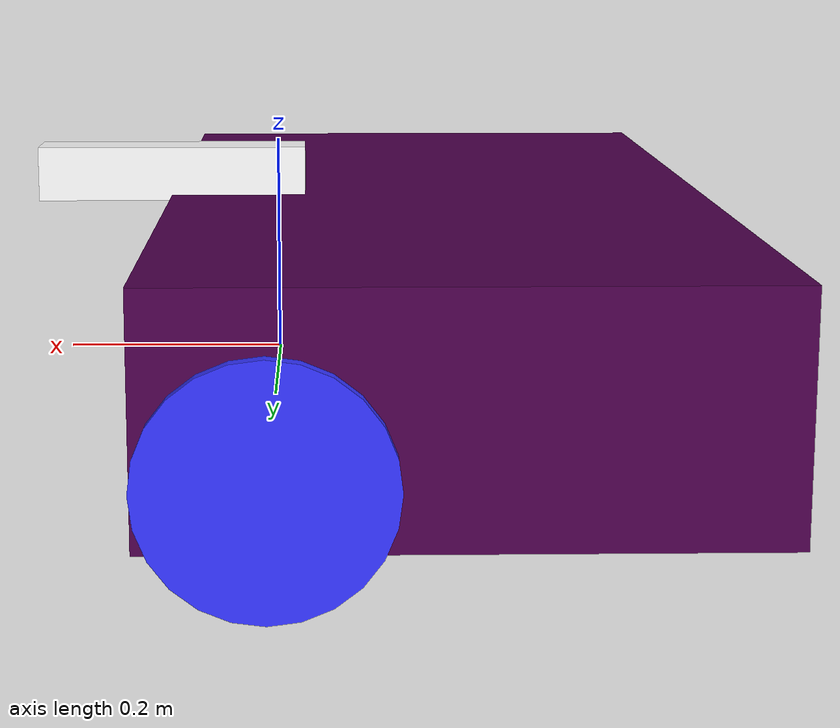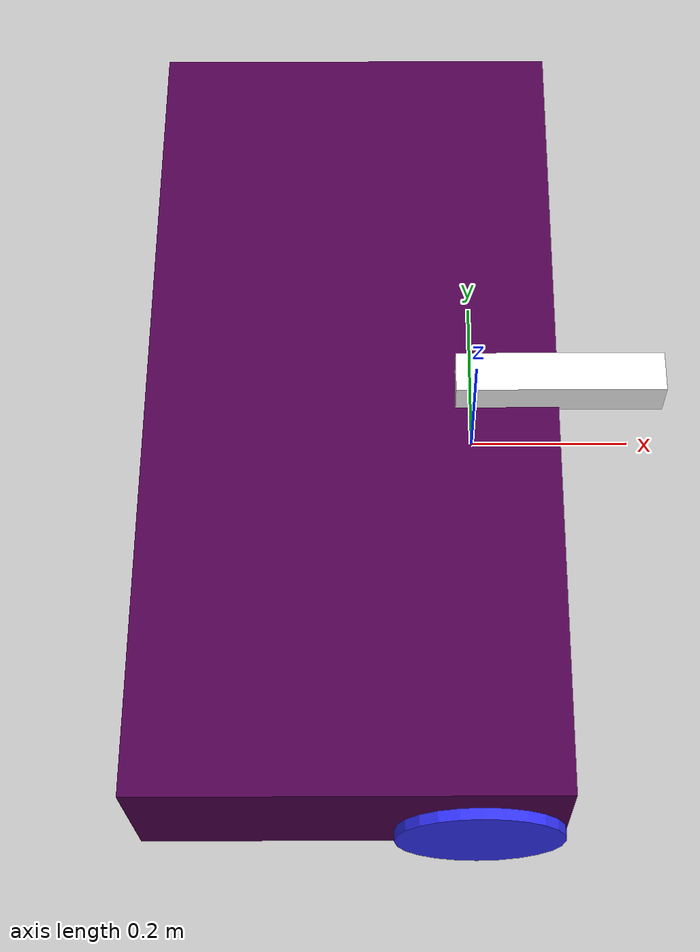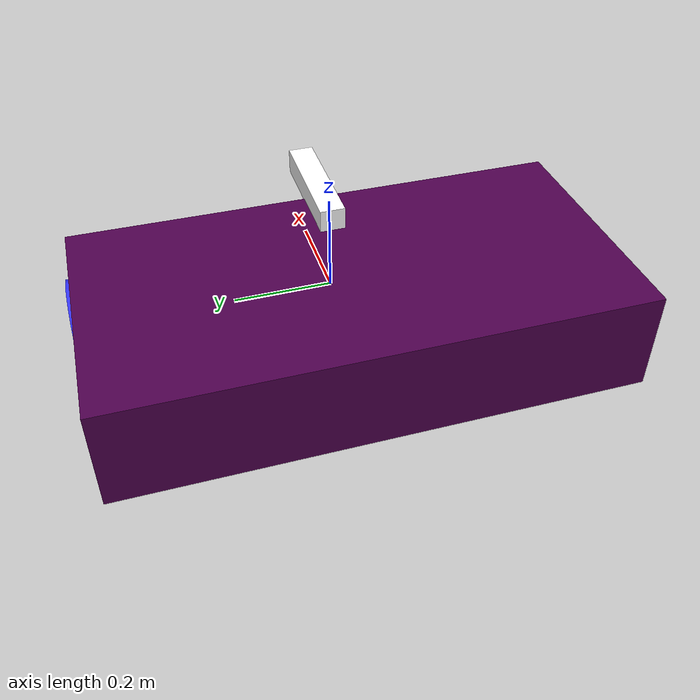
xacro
<?xml version="1.0" ?>
<!-- |    This document was autogenerated by xacro from robot.xacro                    | -->
<!-- |    EDITING THIS FILE BY HAND IS NOT RECOMMENDED                                 | -->
<robot name="robot">
  <!-- Materials -->
  <material name="white">
    <color rgba="1 1 1 1"/>
  </material>
  <material name="orange">
    <color rgba="0.3 0 0.3 1"/>
  </material>
  <material name="blue">
    <color rgba="0.2 0.2 1 1"/>
  </material>
  <material name="black">
    <color rgba="0 0 0 1"/>
  </material>
  <material name="red">
    <color rgba="1 0 0 1"/>
  </material>
  <!-- Base Link -->
  <link name="base_link"/>
  <link name="base_footprint"/>
  <joint name="base_footprint_joint" type="fixed">
    <parent link="base_link"/>
    <child link="base_footprint"/>
    <origin rpy="0 0 0" xyz="0 0 -0.138"/>
  </joint>
  <!-- Chassis -->
  <joint name="chassis_joint" type="fixed">
    <parent link="base_link"/>
    <child link="chassis"/>
    <origin xyz="-0.4 0 -0.05"/>
  </joint>
  <link name="chassis">
    <inertial>
      <origin rpy="0 0 0" xyz="0.25 0 0.1"/>
      <mass value="1.0"/>
      <inertia ixx="0.08666666666666667" ixy="0.0" ixz="0.0" iyy="0.02416666666666667" iyz="0.0" izz="0.10416666666666666"/>
    </inertial>
    <visual>
      <origin xyz="0.25 0 0.1"/>
      <geometry>
        <box size="0.5 1 0.2"/>
      </geometry>
      <material name="orange"/>
    </visual>
    <collision>
      <origin xyz="0.25 0 0.1"/>
      <geometry>
        <box size="0.5 1 0.2"/>
      </geometry>
    </collision>
  </link>
  <gazebo reference="chassis">
    <material>Gazebo/Orange</material>
  </gazebo>
  <!-- Left Wheel -->
  <joint name="left_wheel_joint" type="continuous">
    <parent link="base_link"/>
    <child link="left_wheel"/>
    <origin rpy="-1.5707963267948966 0 3.141592653589793" xyz="0 0.5 0"/>
    <axis xyz="0 0 1"/>
  </joint>
  <link name="left_wheel">
    <visual>
      <geometry>
        <cylinder length="0.026" radius="0.1"/>
      </geometry>
      <material name="blue"/>
    </visual>
    <collision>
      <geometry>
        <cylinder length="0.026" radius="0.1"/>
      </geometry>
    </collision>
    <inertial>
      <origin rpy="0 0 0" xyz="0 0 0"/>
      <mass value="0.05"/>
      <inertia ixx="0.0001278166666666667" ixy="0.0" ixz="0.0" iyy="0.0001278166666666667" iyz="0.0" izz="0.00025000000000000006"/>
    </inertial>
  </link>
  <gazebo reference="left_wheel">
    <material>Gazebo/Blue</material>
  </gazebo>
  <!-- Right Wheel (Restored) -->
  <joint name="right_wheel_joint" type="continuous">
    <parent link="base_link"/>
    <child link="right_wheel"/>
    <origin rpy="1.5707963267948966 0 3.141592653589793" xyz="0 -0.5 0"/>
    <axis xyz="0 0 -1"/>
  </joint>
  <link name="right_wheel">
    <visual>
      <geometry>
        <cylinder length="0.026" radius="0.1"/>
      </geometry>
      <material name="blue"/>
    </visual>
    <collision>
      <geometry>
        <cylinder length="0.026" radius="0.1"/>
      </geometry>
    </collision>
    <inertial>
      <origin rpy="0 0 0" xyz="0 0 0"/>
      <mass value="0.05"/>
      <inertia ixx="0.0001278166666666667" ixy="0.0" ixz="0.0" iyy="0.0001278166666666667" iyz="0.0" izz="0.00025000000000000006"/>
    </inertial>
  </link>
  <gazebo reference="right_wheel">
    <material>Gazebo/Blue</material>
  </gazebo>
  <!-- Caster Wheel -->
  <joint name="caster_wheel_joint" type="fixed">
    <parent link="chassis"/>
    <child link="caster_wheel"/>
    <origin xyz="0.075 0 0.0"/>
  </joint>
  <link name="caster_wheel">
    <visual>
      <geometry>
        <sphere radius="0.05"/>
      </geometry>
      <material name="black"/>
    </visual>
    <collision>
      <geometry>
        <sphere radius="0.05"/>
      </geometry>
    </collision>
    <inertial>
      <origin rpy="0 0 0" xyz="0 0 0"/>
      <mass value="0.01"/>
      <inertia ixx="1.0000000000000003e-05" ixy="0.0" ixz="0.0" iyy="1.0000000000000003e-05" iyz="0.0" izz="1.0000000000000003e-05"/>
    </inertial>
  </link>
  <gazebo reference="caster_wheel">
    <material>Gazebo/Black</material>
    <mu1 value="0.001"/>
    <mu2 value="0.001"/>
  </gazebo>
  <!-- Tail -->
  <joint name="tail" type="fixed">
    <parent link="chassis"/>
    <child link="tail_link"/>
    <origin rpy="0.0 0.0 0" xyz="0.5 0 0.22"/>
  </joint>
  <link name="tail_link">
    <visual>
      <geometry>
        <box size="0.25 0.05 0.05"/>
      </geometry>
      <material name="white"/>
    </visual>
    <collision>
      <geometry>
        <box size="0.25 0.05 0.05"/>
      </geometry>
    </collision>
    <inertial>
      <origin rpy="0 0 0" xyz="0.5 0 0.22"/>
      <mass value="0.001"/>
      <inertia ixx="4.166666666666667e-07" ixy="0.0" ixz="0.0" iyy="6.770833333333333e-05" iyz="0.0" izz="6.770833333333333e-05"/>
    </inertial>
  </link>
  <gazebo reference="tail_link">
    <material>Gazebo/White</material>
    <mu1 value="0.001"/>
    <mu2 value="0.001"/>
  </gazebo>
  <!-- Plugins -->
  <gazebo>
    <plugin filename="gz-sim-joint-state-publisher-system" name="gz::sim::systems::JointStatePublisher"/>
    <plugin filename="gz-sim-diff-drive-system" name="gz::sim::systems::DiffDrive">
      <left_joint>left_wheel_joint</left_joint>
      <right_joint>right_wheel_joint</right_joint>
      <child_frame_id>robot/base_link</child_frame_id>
      <wheel_separation>0.291</wheel_separation>
      <wheel_radius>0.1</wheel_radius>
      <odom_publish_frequency>10</odom_publish_frequency>
    </plugin>
  </gazebo>
</robot>
